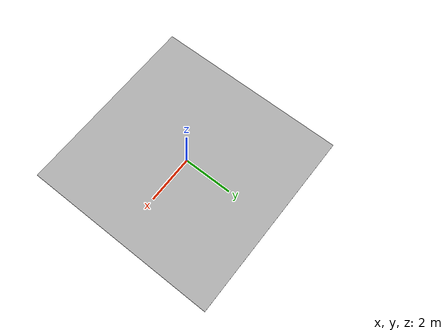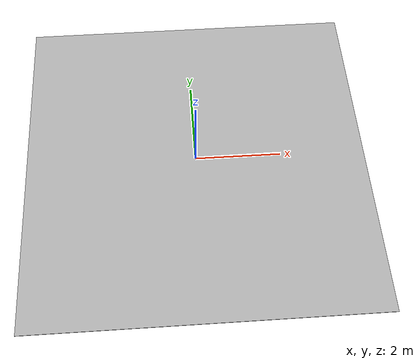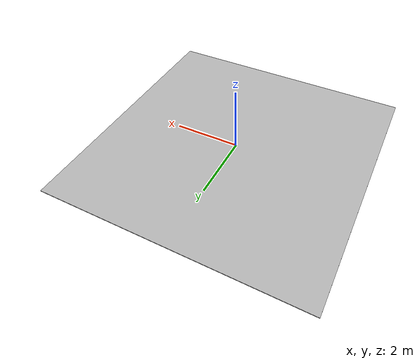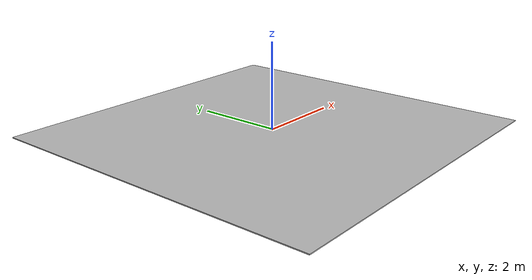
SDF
<?xml version="1.0"?>
<sdf version="1.6">
  <world name="homework_track_world">

    <scene>
      <ambient>0.8 0.8 0.8 1</ambient>
      <shadows>0</shadows>
      <grid>0</grid>
      <background>0.7 0.7 0.7 1</background>
    </scene>

    <gravity>0 0 -9.8</gravity>

    <include>
      <uri>model://simple_course</uri>
    </include>

    <light name="sun" type="directional">
      <cast_shadows>false</cast_shadows>
      <pose>0 0 10 0 0 0</pose>
      <diffuse>0.9 0.9 0.9 1</diffuse>
      <specular>0.1 0.1 0.1 1</specular>
      <direction>-0.5 0.5 -1</direction>
    </light>

    <physics name="default_physics" default="0" type="ode">
      <max_step_size>0.001</max_step_size>
      <real_time_factor>1</real_time_factor>
      <real_time_update_rate>1000</real_time_update_rate>
    </physics>

  </world>
</sdf>

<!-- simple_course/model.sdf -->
<sdf version="1.6">
  <model name="simple_course">
    <static>true</static>
    <link name="link">

      <collision name="collision">
        <geometry>
          <box>
            <size>8 8 0.02</size>
          </box>
        </geometry>
      </collision>

      <visual name="visual">
        <pose>0 0 0.011 0 0 0</pose>
        <geometry>
          <box>
            <size>8 8 0.02</size>
          </box>
        </geometry>
        <material>
          <script>
            <uri>model://simple_course/materials/scripts</uri>
            <uri>model://simple_course/materials/textures</uri>
            <name>SimpleCourse/Ground</name>
          </script>
        </material>
      </visual>

    </link>
  </model>
</sdf>
